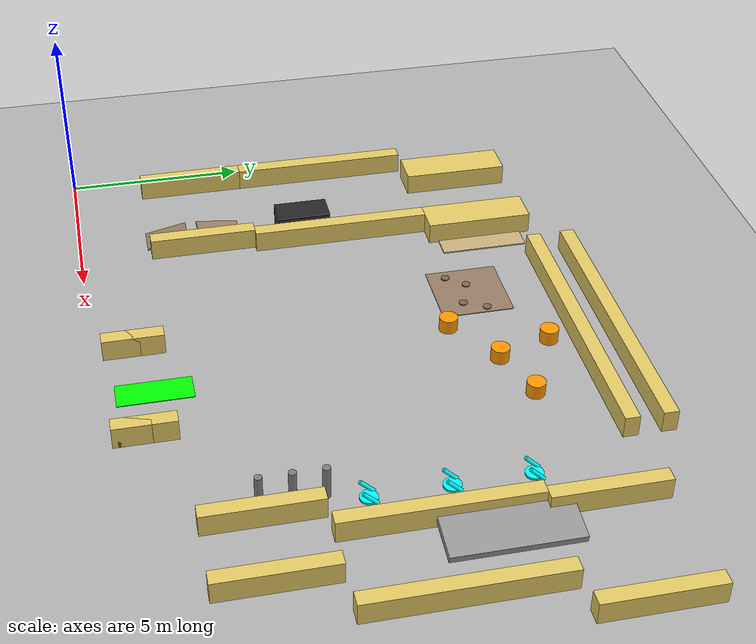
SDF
<?xml version="1.0" ?>
<sdf version="1.8">
  <world name="obstacle_course">
    <physics type="ode">
      <max_step_size>0.001</max_step_size>
      <real_time_factor>1.0</real_time_factor>
      <ode>
        <solver>
          <type>quick</type>
          <iters>50</iters>
          <sor>1.3</sor>
        </solver>
        <constraints>
          <cfm>1e-5</cfm>
          <erp>0.2</erp>
        </constraints>
      </ode>
    </physics>

    <light name="sun" type="directional">
      <cast_shadows>true</cast_shadows>
      <pose>10 10 20 0 0 0</pose>
      <diffuse>0.8 0.8 0.8 1</diffuse>
      <specular>0.2 0.2 0.2 1</specular>
      <attenuation>
        <range>1000</range>
        <constant>0.9</constant>
        <linear>0.01</linear>
        <quadratic>0.001</quadratic>
      </attenuation>
      <direction>-0.5 0.1 -0.9</direction>
    </light>

    <!-- Ground Plane -->
    <model name="ground">
      <static>true</static>
      <link name="link">
        <collision name="collision">
          <geometry>
            <plane>
              <normal>0 0 1</normal>
              <size>25 20</size>
            </plane>
          </geometry>
          <surface>
            <friction>
              <ode>
                <mu>0.7</mu>
                <mu2>0.7</mu2>
              </ode>
            </friction>
          </surface>
        </collision>
        <visual name="visual">
          <geometry>
            <plane>
              <normal>0 0 1</normal>
              <size>25 20</size>
            </plane>
          </geometry>
          <material>
            <ambient>0.7 0.7 0.7 1</ambient>
            <diffuse>0.7 0.7 0.7 1</diffuse>
          </material>
        </visual>
      </link>
    </model>

    <!-- ==================== START/FINISH ZONE ==================== -->
    <model name="start_zone">
      <static>true</static>
      <pose>10.0 1.5 0 0 0 0</pose>
      <link name="link">
        <visual name="visual">
          <geometry><box><size>0.81 2.0 0.02</size></box></geometry>
          <material>
            <ambient>0 1 0 1</ambient>
            <diffuse>0 1 0 1</diffuse>
          </material>
        </visual>
      </link>
    </model>

    <!-- ==================== HAY BALE TRACK BOUNDARIES (OUTER + INNER) ==================== -->

    <!-- BOTTOM SECTION: Outer boundaries -->
    <model name="haybale_bottom_left_outer">
      <static>true</static>
      <pose>8.3 1.2 0.3 0 0 0</pose>
      <link name="link">
        <collision name="collision">
          <geometry><box><size>0.4 1.5 0.6</size></box></geometry>
        </collision>
        <visual name="visual">
          <geometry><box><size>0.4 1.5 0.6</size></box></geometry>
          <material>
            <ambient>0.9 0.8 0.4 1</ambient>
            <diffuse>0.9 0.8 0.4 1</diffuse>
          </material>
        </visual>
      </link>
    </model>

    <model name="haybale_bottom_right_outer">
      <static>true</static>
      <pose>11.7 1.2 0.3 0 0 0</pose>
      <link name="link">
        <collision name="collision">
          <geometry><box><size>0.4 1.5 0.6</size></box></geometry>
        </collision>
        <visual name="visual">
          <geometry><box><size>0.4 1.5 0.6</size></box></geometry>
          <material>
            <ambient>0.9 0.8 0.4 1</ambient>
            <diffuse>0.9 0.8 0.4 1</diffuse>
          </material>
        </visual>
      </link>
    </model>

    <!-- BOTTOM SECTION: Inner boundaries -->
    <model name="haybale_bottom_left_inner">
      <static>true</static>
      <pose>8.3 0.8 0.3 0 0 0</pose>
      <link name="link">
        <collision name="collision">
          <geometry><box><size>0.4 1.0 0.6</size></box></geometry>
        </collision>
        <visual name="visual">
          <geometry><box><size>0.4 1.0 0.6</size></box></geometry>
          <material>
            <ambient>0.9 0.8 0.4 1</ambient>
            <diffuse>0.9 0.8 0.4 1</diffuse>
          </material>
        </visual>
      </link>
    </model>

    <model name="haybale_bottom_right_inner">
      <static>true</static>
      <pose>11.7 0.8 0.3 0 0 0</pose>
      <link name="link">
        <collision name="collision">
          <geometry><box><size>0.4 1.0 0.6</size></box></geometry>
        </collision>
        <visual name="visual">
          <geometry><box><size>0.4 1.0 0.6</size></box></geometry>
          <material>
            <ambient>0.9 0.8 0.4 1</ambient>
            <diffuse>0.9 0.8 0.4 1</diffuse>
          </material>
        </visual>
      </link>
    </model>

    <!-- LEFT SIDE: Outer boundary -->
    <model name="haybale_left_outer_lower">
      <static>true</static>
      <pose>0.8 3.5 0.3 0 0 0</pose>
      <link name="link">
        <collision name="collision">
          <geometry><box><size>0.4 3.0 0.6</size></box></geometry>
        </collision>
        <visual name="visual">
          <geometry><box><size>0.4 3.0 0.6</size></box></geometry>
          <material>
            <ambient>0.9 0.8 0.4 1</ambient>
            <diffuse>0.9 0.8 0.4 1</diffuse>
          </material>
        </visual>
      </link>
    </model>

    <model name="haybale_left_outer_middle">
      <static>true</static>
      <pose>0.8 7.5 0.3 0 0 0</pose>
      <link name="link">
        <collision name="collision">
          <geometry><box><size>0.4 5.0 0.6</size></box></geometry>
        </collision>
        <visual name="visual">
          <geometry><box><size>0.4 5.0 0.6</size></box></geometry>
          <material>
            <ambient>0.9 0.8 0.4 1</ambient>
            <diffuse>0.9 0.8 0.4 1</diffuse>
          </material>
        </visual>
      </link>
    </model>

    <model name="haybale_left_outer_upper">
      <static>true</static>
      <pose>1.8 11.5 0.3 0 0 0</pose>
      <link name="link">
        <collision name="collision">
          <geometry><box><size>1.0 3.0 0.6</size></box></geometry>
        </collision>
        <visual name="visual">
          <geometry><box><size>1.0 3.0 0.6</size></box></geometry>
          <material>
            <ambient>0.9 0.8 0.4 1</ambient>
            <diffuse>0.9 0.8 0.4 1</diffuse>
          </material>
        </visual>
      </link>
    </model>

    <!-- LEFT SIDE: Inner boundary -->
    <model name="haybale_left_inner_lower">
      <static>true</static>
      <pose>4.0 3.5 0.3 0 0 0</pose>
      <link name="link">
        <collision name="collision">
          <geometry><box><size>0.4 3.0 0.6</size></box></geometry>
        </collision>
        <visual name="visual">
          <geometry><box><size>0.4 3.0 0.6</size></box></geometry>
          <material>
            <ambient>0.9 0.8 0.4 1</ambient>
            <diffuse>0.9 0.8 0.4 1</diffuse>
          </material>
        </visual>
      </link>
    </model>

    <model name="haybale_left_inner_middle">
      <static>true</static>
      <pose>4.2 7.5 0.3 0 0 0</pose>
      <link name="link">
        <collision name="collision">
          <geometry><box><size>0.4 5.0 0.6</size></box></geometry>
        </collision>
        <visual name="visual">
          <geometry><box><size>0.4 5.0 0.6</size></box></geometry>
          <material>
            <ambient>0.9 0.8 0.4 1</ambient>
            <diffuse>0.9 0.8 0.4 1</diffuse>
          </material>
        </visual>
      </link>
    </model>

    <model name="haybale_left_inner_upper">
      <static>true</static>
      <pose>4.5 11.5 0.3 0 0 0</pose>
      <link name="link">
        <collision name="collision">
          <geometry><box><size>1.0 3.0 0.6</size></box></geometry>
        </collision>
        <visual name="visual">
          <geometry><box><size>1.0 3.0 0.6</size></box></geometry>
          <material>
            <ambient>0.9 0.8 0.4 1</ambient>
            <diffuse>0.9 0.8 0.4 1</diffuse>
          </material>
        </visual>
      </link>
    </model>

    <!-- TOP SECTION: Outer boundary -->
    <model name="haybale_top_outer">
      <static>true</static>
      <pose>10.0 13.8 0.3 0 0 0</pose>
      <link name="link">
        <collision name="collision">
          <geometry><box><size>8.0 0.4 0.6</size></box></geometry>
        </collision>
        <visual name="visual">
          <geometry><box><size>8.0 0.4 0.6</size></box></geometry>
          <material>
            <ambient>0.9 0.8 0.4 1</ambient>
            <diffuse>0.9 0.8 0.4 1</diffuse>
          </material>
        </visual>
      </link>
    </model>

    <!-- TOP SECTION: Inner boundary -->
    <model name="haybale_top_inner">
      <static>true</static>
      <pose>10.0 12.8 0.3 0 0 0</pose>
      <link name="link">
        <collision name="collision">
          <geometry><box><size>8.0 0.4 0.6</size></box></geometry>
        </collision>
        <visual name="visual">
          <geometry><box><size>8.0 0.4 0.6</size></box></geometry>
          <material>
            <ambient>0.9 0.8 0.4 1</ambient>
            <diffuse>0.9 0.8 0.4 1</diffuse>
          </material>
        </visual>
      </link>
    </model>

    <!-- RIGHT SIDE: Outer boundary -->
    <model name="haybale_right_outer_upper">
      <static>true</static>
      <pose>19.2 11.5 0.3 0 0 0</pose>
      <link name="link">
        <collision name="collision">
          <geometry><box><size>0.4 3.0 0.6</size></box></geometry>
        </collision>
        <visual name="visual">
          <geometry><box><size>0.4 3.0 0.6</size></box></geometry>
          <material>
            <ambient>0.9 0.8 0.4 1</ambient>
            <diffuse>0.9 0.8 0.4 1</diffuse>
          </material>
        </visual>
      </link>
    </model>

    <model name="haybale_right_outer_middle">
      <static>true</static>
      <pose>18.2 7.5 0.3 0 0 0</pose>
      <link name="link">
        <collision name="collision">
          <geometry><box><size>0.4 5.0 0.6</size></box></geometry>
        </collision>
        <visual name="visual">
          <geometry><box><size>0.4 5.0 0.6</size></box></geometry>
          <material>
            <ambient>0.9 0.8 0.4 1</ambient>
            <diffuse>0.9 0.8 0.4 1</diffuse>
          </material>
        </visual>
      </link>
    </model>

    <model name="haybale_right_outer_lower">
      <static>true</static>
      <pose>17.0 3.5 0.3 0 0 0</pose>
      <link name="link">
        <collision name="collision">
          <geometry><box><size>0.4 3.0 0.6</size></box></geometry>
        </collision>
        <visual name="visual">
          <geometry><box><size>0.4 3.0 0.6</size></box></geometry>
          <material>
            <ambient>0.9 0.8 0.4 1</ambient>
            <diffuse>0.9 0.8 0.4 1</diffuse>
          </material>
        </visual>
      </link>
    </model>

    <!-- RIGHT SIDE: Inner boundary -->
    <model name="haybale_right_inner_upper">
      <static>true</static>
      <pose>16.0 11.5 0.3 0 0 0</pose>
      <link name="link">
        <collision name="collision">
          <geometry><box><size>0.4 3.0 0.6</size></box></geometry>
        </collision>
        <visual name="visual">
          <geometry><box><size>0.4 3.0 0.6</size></box></geometry>
          <material>
            <ambient>0.9 0.8 0.4 1</ambient>
            <diffuse>0.9 0.8 0.4 1</diffuse>
          </material>
        </visual>
      </link>
    </model>

    <model name="haybale_right_inner_middle">
      <static>true</static>
      <pose>15.8 7.5 0.3 0 0 0</pose>
      <link name="link">
        <collision name="collision">
          <geometry><box><size>0.4 5.0 0.6</size></box></geometry>
        </collision>
        <visual name="visual">
          <geometry><box><size>0.4 5.0 0.6</size></box></geometry>
          <material>
            <ambient>0.9 0.8 0.4 1</ambient>
            <diffuse>0.9 0.8 0.4 1</diffuse>
          </material>
        </visual>
      </link>
    </model>

    <model name="haybale_right_inner_lower">
      <static>true</static>
      <pose>15.0 3.5 0.3 0 0 0</pose>
      <link name="link">
        <collision name="collision">
          <geometry><box><size>0.4 3.0 0.6</size></box></geometry>
        </collision>
        <visual name="visual">
          <geometry><box><size>0.4 3.0 0.6</size></box></geometry>
          <material>
            <ambient>0.9 0.8 0.4 1</ambient>
            <diffuse>0.9 0.8 0.4 1</diffuse>
          </material>
        </visual>
      </link>
    </model>

    <!-- ==================== OBSTACLES INSIDE THE TRACK ==================== -->

    <!-- RAMP SECTION: Straight up + helical down with side rails -->
    <model name="ramp_up">
      <static>true</static>
      <pose>3.5 2.5 0.25 0.20 0 0</pose>
      <link name="link">
        <collision name="collision">
          <geometry><box><size>0.81 1.2 0.05</size></box></geometry>
          <surface>
            <friction>
              <ode>
                <mu>0.8</mu>
                <mu2>0.8</mu2>
              </ode>
            </friction>
          </surface>
        </collision>
        <visual name="visual">
          <geometry><box><size>0.81 1.2 0.05</size></box></geometry>
          <material>
            <ambient>0.6 0.5 0.4 1</ambient>
            <diffuse>0.6 0.5 0.4 1</diffuse>
          </material>
        </visual>
      </link>
    </model>

    <model name="ramp_down">
      <static>true</static>
      <pose>3.5 4.0 0.3 -0.11 0 0</pose>
      <link name="link">
        <collision name="collision">
          <geometry><box><size>0.81 1.2 0.05</size></box></geometry>
          <surface>
            <friction>
              <ode>
                <mu>0.8</mu>
                <mu2>0.8</mu2>
              </ode>
            </friction>
          </surface>
        </collision>
        <visual name="visual">
          <geometry><box><size>0.81 1.2 0.05</size></box></geometry>
          <material>
            <ambient>0.6 0.5 0.4 1</ambient>
            <diffuse>0.6 0.5 0.4 1</diffuse>
          </material>
        </visual>
      </link>
    </model>

    <!-- Ramp rails -->
    <model name="ramp_rail_left_up">
      <static>true</static>
      <pose>3.1 2.5 0.35 0.20 0 0</pose>
      <link name="link">
        <collision name="collision">
          <geometry><box><size>0.05 1.2 0.15</size></box></geometry>
        </collision>
      </link>
    </model>

    <model name="ramp_rail_right_up">
      <static>true</static>
      <pose>3.9 2.5 0.35 0.20 0 0</pose>
      <link name="link">
        <collision name="collision">
          <geometry><box><size>0.05 1.2 0.15</size></box></geometry>
        </collision>
      </link>
    </model>

    <!-- TUNNEL: 32" x 5' x 25" tall -->
    <model name="tunnel_roof">
      <static>true</static>
      <pose>3.5 6.5 0.64 0 0 0</pose>
      <link name="link">
        <collision name="collision">
          <geometry><box><size>0.81 1.52 0.05</size></box></geometry>
        </collision>
        <visual name="visual">
          <geometry><box><size>0.81 1.52 0.05</size></box></geometry>
          <material>
            <ambient>0.15 0.15 0.15 1</ambient>
            <diffuse>0.15 0.15 0.15 1</diffuse>
          </material>
        </visual>
      </link>
    </model>

    <model name="tunnel_left_wall">
      <static>true</static>
      <pose>3.1 6.5 0.32 0 0 0</pose>
      <link name="link">
        <collision name="collision">
          <geometry><box><size>0.05 1.52 0.64</size></box></geometry>
        </collision>
        <visual name="visual">
          <geometry><box><size>0.05 1.52 0.64</size></box></geometry>
          <material>
            <ambient>0.2 0.2 0.2 1</ambient>
            <diffuse>0.2 0.2 0.2 1</diffuse>
          </material>
        </visual>
      </link>
    </model>

    <model name="tunnel_right_wall">
      <static>true</static>
      <pose>3.9 6.5 0.32 0 0 0</pose>
      <link name="link">
        <collision name="collision">
          <geometry><box><size>0.05 1.52 0.64</size></box></geometry>
        </collision>
        <visual name="visual">
          <geometry><box><size>0.05 1.52 0.64</size></box></geometry>
          <material>
            <ambient>0.2 0.2 0.2 1</ambient>
            <diffuse>0.2 0.2 0.2 1</diffuse>
          </material>
        </visual>
      </link>
    </model>

    <!-- NARROW SECTION: Straight (20" wide) then curved -->
    <model name="narrow_straight">
      <static>true</static>
      <pose>3.5 8.5 0 0 0 0</pose>
      <link name="link">
        <visual name="visual">
          <geometry><box><size>0.508 1.5 0.02</size></box></geometry>
          <material>
            <ambient>0.8 0.7 0.3 1</ambient>
            <diffuse>0.8 0.7 0.3 1</diffuse>
          </material>
        </visual>
      </link>
    </model>

    <model name="narrow_wall_left">
      <static>true</static>
      <pose>3.2 8.5 0.15 0 0 0</pose>
      <link name="link">
        <collision name="collision">
          <geometry><box><size>0.05 1.5 0.3</size></box></geometry>
        </collision>
      </link>
    </model>

    <model name="narrow_wall_right">
      <static>true</static>
      <pose>3.8 8.5 0.15 0 0 0</pose>
      <link name="link">
        <collision name="collision">
          <geometry><box><size>0.05 1.5 0.3</size></box></geometry>
        </collision>
      </link>
    </model>

    <!-- Curved narrow section -->
    <model name="narrow_curve_outer">
      <static>true</static>
      <pose>5.5 10.2 0 0 0 0</pose>
      <link name="link">
        <collision name="collision">
          <geometry><cylinder><radius>1.3</radius><length>0.05</length></cylinder></geometry>
        </collision>
      </link>
    </model>

    <model name="narrow_curve_inner">
      <static>true</static>
      <pose>5.5 10.2 0 0 0 0</pose>
      <link name="link">
        <collision name="collision">
          <geometry><cylinder><radius>0.8</radius><length>0.05</length></cylinder></geometry>
        </collision>
      </link>
    </model>

    <!-- GRAVEL BOX: 4' x 8' x 1.5" deep -->
    <model name="gravel_box">
      <static>true</static>
      <pose>5.0 11.5 0.019 0 0 0</pose>
      <link name="link">
        <collision name="collision">
          <geometry><box><size>1.22 2.44 0.038</size></box></geometry>
          <surface>
            <friction>
              <ode>
                <mu>0.5</mu>
                <mu2>0.5</mu2>
              </ode>
            </friction>
          </surface>
        </collision>
        <visual name="visual">
          <geometry><box><size>1.22 2.44 0.038</size></box></geometry>
          <material>
            <ambient>0.8 0.7 0.5 1</ambient>
            <diffuse>0.8 0.7 0.5 1</diffuse>
          </material>
        </visual>
      </link>
    </model>

    <!-- POTHOLE SECTION: Bumpy road with multiple small bumps -->
    <model name="pothole_bumpy_road">
      <static>true</static>
      <pose>7.5 10.5 0 0 0 0</pose>
      <link name="link">
        <visual name="visual">
          <geometry><box><size>2.0 2.0 0.02</size></box></geometry>
          <material>
            <ambient>0.6 0.5 0.4 1</ambient>
            <diffuse>0.6 0.5 0.4 1</diffuse>
          </material>
        </visual>
      </link>
    </model>

    <!-- Small bumps across the pothole road (0.75" = 0.019m tall) -->
    <model name="bump_pothole_1">
      <static>true</static>
      <pose>6.8 10.0 0.019 0 0 0</pose>
      <link name="link">
        <collision name="collision">
          <geometry><cylinder><radius>0.12</radius><length>0.038</length></cylinder></geometry>
        </collision>
        <visual name="visual">
          <geometry><cylinder><radius>0.12</radius><length>0.038</length></cylinder></geometry>
          <material>
            <ambient>0.5 0.4 0.3 1</ambient>
            <diffuse>0.5 0.4 0.3 1</diffuse>
          </material>
        </visual>
      </link>
    </model>

    <model name="bump_pothole_2">
      <static>true</static>
      <pose>7.2 10.5 0.019 0 0 0</pose>
      <link name="link">
        <collision name="collision">
          <geometry><cylinder><radius>0.12</radius><length>0.038</length></cylinder></geometry>
        </collision>
        <visual name="visual">
          <geometry><cylinder><radius>0.12</radius><length>0.038</length></cylinder></geometry>
          <material>
            <ambient>0.5 0.4 0.3 1</ambient>
            <diffuse>0.5 0.4 0.3 1</diffuse>
          </material>
        </visual>
      </link>
    </model>

    <model name="bump_pothole_3">
      <static>true</static>
      <pose>8.0 10.2 0.019 0 0 0</pose>
      <link name="link">
        <collision name="collision">
          <geometry><cylinder><radius>0.12</radius><length>0.038</length></cylinder></geometry>
        </collision>
        <visual name="visual">
          <geometry><cylinder><radius>0.12</radius><length>0.038</length></cylinder></geometry>
          <material>
            <ambient>0.5 0.4 0.3 1</ambient>
            <diffuse>0.5 0.4 0.3 1</diffuse>
          </material>
        </visual>
      </link>
    </model>

    <model name="bump_pothole_4">
      <static>true</static>
      <pose>8.3 10.8 0.019 0 0 0</pose>
      <link name="link">
        <collision name="collision">
          <geometry><cylinder><radius>0.12</radius><length>0.038</length></cylinder></geometry>
        </collision>
        <visual name="visual">
          <geometry><cylinder><radius>0.12</radius><length>0.038</length></cylinder></geometry>
          <material>
            <ambient>0.5 0.4 0.3 1</ambient>
            <diffuse>0.5 0.4 0.3 1</diffuse>
          </material>
        </visual>
      </link>
    </model>

    <!-- OBSTACLE SECTION: 4 five-gallon buckets (orange) -->
    <model name="bucket_1">
      <static>true</static>
      <pose>9.0 9.5 0.2 0 0 0</pose>
      <link name="link">
        <collision name="collision">
          <geometry><cylinder><radius>0.25</radius><length>0.4</length></cylinder></geometry>
        </collision>
        <visual name="visual">
          <geometry><cylinder><radius>0.25</radius><length>0.4</length></cylinder></geometry>
          <material>
            <ambient>1 0.6 0 1</ambient>
            <diffuse>1 0.6 0 1</diffuse>
          </material>
        </visual>
      </link>
    </model>

    <model name="bucket_2">
      <static>true</static>
      <pose>10.5 10.5 0.2 0 0 0</pose>
      <link name="link">
        <collision name="collision">
          <geometry><cylinder><radius>0.25</radius><length>0.4</length></cylinder></geometry>
        </collision>
        <visual name="visual">
          <geometry><cylinder><radius>0.25</radius><length>0.4</length></cylinder></geometry>
          <material>
            <ambient>1 0.6 0 1</ambient>
            <diffuse>1 0.6 0 1</diffuse>
          </material>
        </visual>
      </link>
    </model>

    <model name="bucket_3">
      <static>true</static>
      <pose>10.0 12.0 0.2 0 0 0</pose>
      <link name="link">
        <collision name="collision">
          <geometry><cylinder><radius>0.25</radius><length>0.4</length></cylinder></geometry>
        </collision>
        <visual name="visual">
          <geometry><cylinder><radius>0.25</radius><length>0.4</length></cylinder></geometry>
          <material>
            <ambient>1 0.6 0 1</ambient>
            <diffuse>1 0.6 0 1</diffuse>
          </material>
        </visual>
      </link>
    </model>

    <model name="bucket_4">
      <static>true</static>
      <pose>12.0 11.0 0.2 0 0 0</pose>
      <link name="link">
        <collision name="collision">
          <geometry><cylinder><radius>0.25</radius><length>0.4</length></cylinder></geometry>
        </collision>
        <visual name="visual">
          <geometry><cylinder><radius>0.25</radius><length>0.4</length></cylinder></geometry>
          <material>
            <ambient>1 0.6 0 1</ambient>
            <diffuse>1 0.6 0 1</diffuse>
          </material>
        </visual>
      </link>
    </model>

    <!-- HOOP SECTION: Vertical rings (~9" radius) the robot passes through -->
    <!-- Hoops as torus (donut) shapes that the robot must drive through -->
    <model name="hoop_1">
      <static>true</static>
      <pose>15.0 10.0 0.25 0 0 0</pose>
      <link name="link">
        <collision name="collision">
          <geometry><cylinder><radius>0.23</radius><length>0.05</length></cylinder></geometry>
        </collision>
        <visual name="visual">
          <geometry><cylinder><radius>0.23</radius><length>0.05</length></cylinder></geometry>
          <material>
            <ambient>0 1 1 1</ambient>
            <diffuse>0 1 1 1</diffuse>
          </material>
        </visual>
      </link>
    </model>

    <model name="hoop_1_vertical_ring_left">
      <static>true</static>
      <pose>14.8 10.0 0.4 0.7854 0 0</pose>
      <link name="link">
        <collision name="collision">
          <geometry><cylinder><radius>0.05</radius><length>0.5</length></cylinder></geometry>
        </collision>
        <visual name="visual">
          <geometry><cylinder><radius>0.05</radius><length>0.5</length></cylinder></geometry>
          <material>
            <ambient>0 1 1 1</ambient>
            <diffuse>0 1 1 1</diffuse>
          </material>
        </visual>
      </link>
    </model>

    <model name="hoop_1_vertical_ring_right">
      <static>true</static>
      <pose>15.2 10.0 0.4 0.7854 0 0</pose>
      <link name="link">
        <collision name="collision">
          <geometry><cylinder><radius>0.05</radius><length>0.5</length></cylinder></geometry>
        </collision>
        <visual name="visual">
          <geometry><cylinder><radius>0.05</radius><length>0.5</length></cylinder></geometry>
          <material>
            <ambient>0 1 1 1</ambient>
            <diffuse>0 1 1 1</diffuse>
          </material>
        </visual>
      </link>
    </model>

    <model name="hoop_2">
      <static>true</static>
      <pose>15.0 8.0 0.25 0 0 0</pose>
      <link name="link">
        <collision name="collision">
          <geometry><cylinder><radius>0.23</radius><length>0.05</length></cylinder></geometry>
        </collision>
        <visual name="visual">
          <geometry><cylinder><radius>0.23</radius><length>0.05</length></cylinder></geometry>
          <material>
            <ambient>0 1 1 1</ambient>
            <diffuse>0 1 1 1</diffuse>
          </material>
        </visual>
      </link>
    </model>

    <model name="hoop_2_vertical_ring_left">
      <static>true</static>
      <pose>14.8 8.0 0.4 0.7854 0 0</pose>
      <link name="link">
        <collision name="collision">
          <geometry><cylinder><radius>0.05</radius><length>0.5</length></cylinder></geometry>
        </collision>
        <visual name="visual">
          <geometry><cylinder><radius>0.05</radius><length>0.5</length></cylinder></geometry>
          <material>
            <ambient>0 1 1 1</ambient>
            <diffuse>0 1 1 1</diffuse>
          </material>
        </visual>
      </link>
    </model>

    <model name="hoop_2_vertical_ring_right">
      <static>true</static>
      <pose>15.2 8.0 0.4 0.7854 0 0</pose>
      <link name="link">
        <collision name="collision">
          <geometry><cylinder><radius>0.05</radius><length>0.5</length></cylinder></geometry>
        </collision>
        <visual name="visual">
          <geometry><cylinder><radius>0.05</radius><length>0.5</length></cylinder></geometry>
          <material>
            <ambient>0 1 1 1</ambient>
            <diffuse>0 1 1 1</diffuse>
          </material>
        </visual>
      </link>
    </model>

    <model name="hoop_3">
      <static>true</static>
      <pose>15.0 6.0 0.25 0 0 0</pose>
      <link name="link">
        <collision name="collision">
          <geometry><cylinder><radius>0.23</radius><length>0.05</length></cylinder></geometry>
        </collision>
        <visual name="visual">
          <geometry><cylinder><radius>0.23</radius><length>0.05</length></cylinder></geometry>
          <material>
            <ambient>0 1 1 1</ambient>
            <diffuse>0 1 1 1</diffuse>
          </material>
        </visual>
      </link>
    </model>

    <model name="hoop_3_vertical_ring_left">
      <static>true</static>
      <pose>14.8 6.0 0.4 0.7854 0 0</pose>
      <link name="link">
        <collision name="collision">
          <geometry><cylinder><radius>0.05</radius><length>0.5</length></cylinder></geometry>
        </collision>
        <visual name="visual">
          <geometry><cylinder><radius>0.05</radius><length>0.5</length></cylinder></geometry>
          <material>
            <ambient>0 1 1 1</ambient>
            <diffuse>0 1 1 1</diffuse>
          </material>
        </visual>
      </link>
    </model>

    <model name="hoop_3_vertical_ring_right">
      <static>true</static>
      <pose>15.2 6.0 0.4 0.7854 0 0</pose>
      <link name="link">
        <collision name="collision">
          <geometry><cylinder><radius>0.05</radius><length>0.5</length></cylinder></geometry>
        </collision>
        <visual name="visual">
          <geometry><cylinder><radius>0.05</radius><length>0.5</length></cylinder></geometry>
          <material>
            <ambient>0 1 1 1</ambient>
            <diffuse>0 1 1 1</diffuse>
          </material>
        </visual>
      </link>
    </model>

    <!-- BANK SECTION: 8.5° incline -->
    <model name="bank_section">
      <static>true</static>
      <pose>16.5 9.0 0.15 0 0.1484 0</pose>
      <link name="link">
        <collision name="collision">
          <geometry><box><size>1.22 3.26 0.2</size></box></geometry>
          <surface>
            <friction>
              <ode>
                <mu>0.7</mu>
                <mu2>0.7</mu2>
              </ode>
            </friction>
          </surface>
        </collision>
        <visual name="visual">
          <geometry><box><size>1.22 3.26 0.2</size></box></geometry>
          <material>
            <ambient>0.6 0.6 0.6 1</ambient>
            <diffuse>0.6 0.6 0.6 1</diffuse>
          </material>
        </visual>
      </link>
    </model>

    <!-- CAR WASH SECTION: Hanging pipes -->
    <model name="carwash_pipe_1">
      <static>true</static>
      <pose>14.5 3.5 0.4 0 0 0</pose>
      <link name="link">
        <collision name="collision">
          <geometry><cylinder><radius>0.1</radius><length>1.0</length></cylinder></geometry>
        </collision>
        <visual name="visual">
          <geometry><cylinder><radius>0.1</radius><length>1.0</length></cylinder></geometry>
          <material>
            <ambient>0.5 0.5 0.5 1</ambient>
            <diffuse>0.5 0.5 0.5 1</diffuse>
          </material>
        </visual>
      </link>
    </model>

    <model name="carwash_pipe_2">
      <static>true</static>
      <pose>14.5 4.3 0.4 0 0 0</pose>
      <link name="link">
        <collision name="collision">
          <geometry><cylinder><radius>0.1</radius><length>1.0</length></cylinder></geometry>
        </collision>
        <visual name="visual">
          <geometry><cylinder><radius>0.1</radius><length>1.0</length></cylinder></geometry>
          <material>
            <ambient>0.5 0.5 0.5 1</ambient>
            <diffuse>0.5 0.5 0.5 1</diffuse>
          </material>
        </visual>
      </link>
    </model>

    <model name="carwash_pipe_3">
      <static>true</static>
      <pose>14.5 5.1 0.4 0 0 0</pose>
      <link name="link">
        <collision name="collision">
          <geometry><cylinder><radius>0.1</radius><length>1.0</length></cylinder></geometry>
        </collision>
        <visual name="visual">
          <geometry><cylinder><radius>0.1</radius><length>1.0</length></cylinder></geometry>
          <material>
            <ambient>0.5 0.5 0.5 1</ambient>
            <diffuse>0.5 0.5 0.5 1</diffuse>
          </material>
        </visual>
      </link>
    </model>

  </world>
</sdf>
